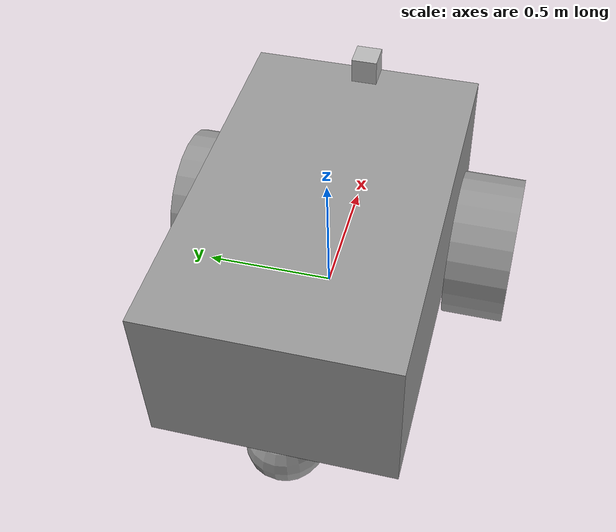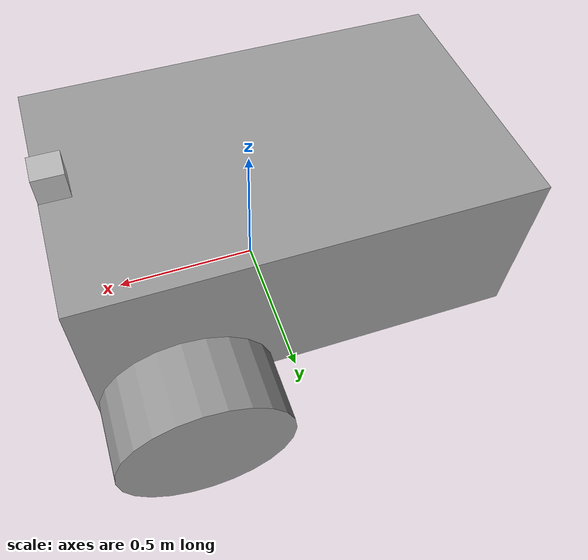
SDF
<?xml version='1.0'?>
<sdf version='1.7'>
  <model name='robot_000'>
    <link name='caster'>
      <inertial>
        <mass>1</mass>
        <inertia>
          <ixx>0.1</ixx>
          <ixy>0</ixy>
          <ixz>0</ixz>
          <iyy>0.1</iyy>
          <iyz>0</iyz>
          <izz>0.1</izz>
        </inertia>
        <pose>0 0 0 0 -0 0</pose>
      </inertial>
      <pose>-0.656931 0 -0.1875 0 -0 0</pose>
      <gravity>1</gravity>
      <self_collide>0</self_collide>
      <kinematic>0</kinematic>
      <enable_wind>0</enable_wind>
      <visual name='visual'>
        <pose>0 0 0 0 -0 0</pose>
        <geometry>
          <sphere>
            <radius>0.15</radius>
          </sphere>
        </geometry>
        <material>
          <lighting>1</lighting>
          <script>
            <uri>file://media/materials/scripts/gazebo.material</uri>
            <name>Gazebo/Grey</name>
          </script>
          <shader type='pixel'>
            <normal_map>__default__</normal_map>
          </shader>
          <ambient>0.3 0.3 0.3 1</ambient>
          <diffuse>0.7 0.7 0.7 1</diffuse>
          <specular>0.01 0.01 0.01 1</specular>
          <emissive>0 0 0 1</emissive>
        </material>
        <transparency>0</transparency>
        <cast_shadows>1</cast_shadows>
      </visual>
      <collision name='collision'>
        <laser_retro>0</laser_retro>
        <max_contacts>10</max_contacts>
        <pose>0 0 0 0 -0 0</pose>
        <geometry>
          <sphere>
            <radius>0.15</radius>
          </sphere>
        </geometry>
        <surface>
          <friction>
            <ode>
              <mu>1</mu>
              <mu2>1</mu2>
              <fdir1>0 0 0</fdir1>
              <slip1>0</slip1>
              <slip2>0</slip2>
            </ode>
            <torsional>
              <coefficient>1</coefficient>
              <patch_radius>0</patch_radius>
              <surface_radius>0</surface_radius>
              <use_patch_radius>1</use_patch_radius>
              <ode>
                <slip>0</slip>
              </ode>
            </torsional>
          </friction>
          <bounce>
            <restitution_coefficient>0</restitution_coefficient>
            <threshold>1e+06</threshold>
          </bounce>
          <contact>
            <collide_without_contact>0</collide_without_contact>
            <collide_without_contact_bitmask>1</collide_without_contact_bitmask>
            <collide_bitmask>1</collide_bitmask>
            <ode>
              <soft_cfm>0</soft_cfm>
              <soft_erp>0.2</soft_erp>
              <kp>1e+13</kp>
              <kd>1</kd>
              <max_vel>0.01</max_vel>
              <min_depth>0</min_depth>
            </ode>
            <bullet>
              <split_impulse>1</split_impulse>
              <split_impulse_penetration_threshold>-0.01</split_impulse_penetration_threshold>
              <soft_cfm>0</soft_cfm>
              <soft_erp>0.2</soft_erp>
              <kp>1e+13</kp>
              <kd>1</kd>
            </bullet>
          </contact>
        </surface>
      </collision>
    </link>
    <link name='chassis'>
      <inertial>
        <mass>1.1509</mass>
        <inertia>
          <ixx>0.15021</ixx>
          <ixy>0</ixy>
          <ixz>0</ixz>
          <iyy>0.279296</iyy>
          <iyz>0</iyz>
          <izz>0.286024</izz>
        </inertia>
        <pose>0 0 0 0 -0 0</pose>
      </inertial>
      <pose>-0.071386 0 0.2625 0 -0 0</pose>
      <gravity>1</gravity>
      <self_collide>0</self_collide>
      <kinematic>0</kinematic>
      <enable_wind>0</enable_wind>
      <visual name='visual'>
        <pose>0 0 0 0 -0 0</pose>
        <geometry>
          <box>
            <size>1.47109 0.904525 0.6</size>
          </box>
        </geometry>
        <material>
          <lighting>1</lighting>
          <script>
            <uri>file://media/materials/scripts/gazebo.material</uri>
            <name>Gazebo/Grey</name>
          </script>
          <shader type='pixel'>
            <normal_map>__default__</normal_map>
          </shader>
          <ambient>0.3 0.3 0.3 1</ambient>
          <diffuse>0.7 0.7 0.7 1</diffuse>
          <specular>0.01 0.01 0.01 1</specular>
          <emissive>0 0 0 1</emissive>
        </material>
        <transparency>0</transparency>
        <cast_shadows>1</cast_shadows>
      </visual>
      <collision name='collision'>
        <laser_retro>0</laser_retro>
        <max_contacts>10</max_contacts>
        <pose>0 0 0 0 -0 0</pose>
        <geometry>
          <box>
            <size>1.47109 0.904525 0.6</size>
          </box>
        </geometry>
        <surface>
          <friction>
            <ode>
              <mu>1</mu>
              <mu2>1</mu2>
              <fdir1>0 0 0</fdir1>
              <slip1>0</slip1>
              <slip2>0</slip2>
            </ode>
            <torsional>
              <coefficient>1</coefficient>
              <patch_radius>0</patch_radius>
              <surface_radius>0</surface_radius>
              <use_patch_radius>1</use_patch_radius>
              <ode>
                <slip>0</slip>
              </ode>
            </torsional>
          </friction>
          <bounce>
            <restitution_coefficient>0</restitution_coefficient>
            <threshold>1e+06</threshold>
          </bounce>
          <contact>
            <collide_without_contact>0</collide_without_contact>
            <collide_without_contact_bitmask>1</collide_without_contact_bitmask>
            <collide_bitmask>1</collide_bitmask>
            <ode>
              <soft_cfm>0</soft_cfm>
              <soft_erp>0.2</soft_erp>
              <kp>1e+13</kp>
              <kd>1</kd>
              <max_vel>0.01</max_vel>
              <min_depth>0</min_depth>
            </ode>
            <bullet>
              <split_impulse>1</split_impulse>
              <split_impulse_penetration_threshold>-0.01</split_impulse_penetration_threshold>
              <soft_cfm>0</soft_cfm>
              <soft_erp>0.2</soft_erp>
              <kp>1e+13</kp>
              <kd>1</kd>
            </bullet>
          </contact>
        </surface>
      </collision>
    </link>
    <link name='wheel_left'>
      <inertial>
        <mass>0.0239087</mass>
        <inertia>
          <ixx>0.00044912</ixx>
          <ixy>0</ixy>
          <ixz>0</ixz>
          <iyy>0.00044912</iyy>
          <iyz>0</iyz>
          <izz>0.00087145</izz>
        </inertia>
        <pose>0 0 0 0 -0 0</pose>
      </inertial>
      <pose>0.364158 0.577265 -0.0375 -1.5708 -0 3e-06</pose>
      <gravity>1</gravity>
      <self_collide>0</self_collide>
      <kinematic>0</kinematic>
      <enable_wind>0</enable_wind>
      <visual name='visual'>
        <pose>0 0 0 0 -0 0</pose>
        <geometry>
          <cylinder>
            <radius>0.3</radius>
            <length>0.25</length>
          </cylinder>
        </geometry>
        <material>
          <lighting>1</lighting>
          <script>
            <uri>file://media/materials/scripts/gazebo.material</uri>
            <name>Gazebo/Grey</name>
          </script>
          <shader type='pixel'>
            <normal_map>__default__</normal_map>
          </shader>
          <ambient>0.3 0.3 0.3 1</ambient>
          <diffuse>0.7 0.7 0.7 1</diffuse>
          <specular>0.01 0.01 0.01 1</specular>
          <emissive>0 0 0 1</emissive>
        </material>
        <transparency>0</transparency>
        <cast_shadows>1</cast_shadows>
      </visual>
      <collision name='collision'>
        <laser_retro>0</laser_retro>
        <max_contacts>10</max_contacts>
        <pose>0 0 0 0 -0 0</pose>
        <geometry>
          <cylinder>
            <radius>0.3</radius>
            <length>0.25</length>
          </cylinder>
        </geometry>
        <surface>
          <friction>
            <ode>
              <mu>1</mu>
              <mu2>1</mu2>
              <fdir1>0 0 0</fdir1>
              <slip1>0</slip1>
              <slip2>0</slip2>
            </ode>
            <torsional>
              <coefficient>1</coefficient>
              <patch_radius>0</patch_radius>
              <surface_radius>0</surface_radius>
              <use_patch_radius>1</use_patch_radius>
              <ode>
                <slip>0</slip>
              </ode>
            </torsional>
          </friction>
          <bounce>
            <restitution_coefficient>0</restitution_coefficient>
            <threshold>1e+06</threshold>
          </bounce>
          <contact>
            <collide_without_contact>0</collide_without_contact>
            <collide_without_contact_bitmask>1</collide_without_contact_bitmask>
            <collide_bitmask>1</collide_bitmask>
            <ode>
              <soft_cfm>0</soft_cfm>
              <soft_erp>0.2</soft_erp>
              <kp>1e+13</kp>
              <kd>1</kd>
              <max_vel>0.01</max_vel>
              <min_depth>0</min_depth>
            </ode>
            <bullet>
              <split_impulse>1</split_impulse>
              <split_impulse_penetration_threshold>-0.01</split_impulse_penetration_threshold>
              <soft_cfm>0</soft_cfm>
              <soft_erp>0.2</soft_erp>
              <kp>1e+13</kp>
              <kd>1</kd>
            </bullet>
          </contact>
        </surface>
      </collision>
    </link>
    <link name='wheel_right'>
      <inertial>
        <mass>0.0239087</mass>
        <inertia>
          <ixx>0.00044912</ixx>
          <ixy>0</ixy>
          <ixz>0</ixz>
          <iyy>0.00044912</iyy>
          <iyz>0</iyz>
          <izz>0.00087145</izz>
        </inertia>
        <pose>0 0 0 0 -0 0</pose>
      </inertial>
      <pose>0.364159 -0.577264 -0.0375 -1.5708 -0 3e-06</pose>
      <gravity>1</gravity>
      <self_collide>0</self_collide>
      <kinematic>0</kinematic>
      <enable_wind>0</enable_wind>
      <visual name='visual'>
        <pose>0 0 0 0 -0 0</pose>
        <geometry>
          <cylinder>
            <radius>0.3</radius>
            <length>0.25</length>
          </cylinder>
        </geometry>
        <material>
          <lighting>1</lighting>
          <script>
            <uri>file://media/materials/scripts/gazebo.material</uri>
            <name>Gazebo/Grey</name>
          </script>
          <shader type='pixel'>
            <normal_map>__default__</normal_map>
          </shader>
          <ambient>0.3 0.3 0.3 1</ambient>
          <diffuse>0.7 0.7 0.7 1</diffuse>
          <specular>0.01 0.01 0.01 1</specular>
          <emissive>0 0 0 1</emissive>
        </material>
        <transparency>0</transparency>
        <cast_shadows>1</cast_shadows>
      </visual>
      <collision name='collision'>
        <laser_retro>0</laser_retro>
        <max_contacts>10</max_contacts>
        <pose>0 0 0 0 -0 0</pose>
        <geometry>
          <cylinder>
            <radius>0.3</radius>
            <length>0.25</length>
          </cylinder>
        </geometry>
        <surface>
          <friction>
            <ode>
              <mu>1</mu>
              <mu2>1</mu2>
              <fdir1>0 0 0</fdir1>
              <slip1>0</slip1>
              <slip2>0</slip2>
            </ode>
            <torsional>
              <coefficient>1</coefficient>
              <patch_radius>0</patch_radius>
              <surface_radius>0</surface_radius>
              <use_patch_radius>1</use_patch_radius>
              <ode>
                <slip>0</slip>
              </ode>
            </torsional>
          </friction>
          <bounce>
            <restitution_coefficient>0</restitution_coefficient>
            <threshold>1e+06</threshold>
          </bounce>
          <contact>
            <collide_without_contact>0</collide_without_contact>
            <collide_without_contact_bitmask>1</collide_without_contact_bitmask>
            <collide_bitmask>1</collide_bitmask>
            <ode>
              <soft_cfm>0</soft_cfm>
              <soft_erp>0.2</soft_erp>
              <kp>1e+13</kp>
              <kd>1</kd>
              <max_vel>0.01</max_vel>
              <min_depth>0</min_depth>
            </ode>
            <bullet>
              <split_impulse>1</split_impulse>
              <split_impulse_penetration_threshold>-0.01</split_impulse_penetration_threshold>
              <soft_cfm>0</soft_cfm>
              <soft_erp>0.2</soft_erp>
              <kp>1e+13</kp>
              <kd>1</kd>
            </bullet>
          </contact>
        </surface>
      </collision>
    </link>
    <model name='camera'>
      <pose>0.612872 -0.00649 0.611735 0 -0 0</pose>
      <link name='link'>
        <inertial>
          <mass>0.1</mass>
          <inertia>
            <ixx>0.000166667</ixx>
            <iyy>0.000166667</iyy>
            <izz>0.000166667</izz>
            <ixy>0</ixy>
            <ixz>0</ixz>
            <iyz>0</iyz>
          </inertia>
          <pose>0 0 0 0 -0 0</pose>
        </inertial>
        <collision name='collision'>
          <geometry>
            <box>
              <size>0.1 0.1 0.1</size>
            </box>
          </geometry>
          <max_contacts>10</max_contacts>
          <surface>
            <contact>
              <ode/>
            </contact>
            <bounce/>
            <friction>
              <torsional>
                <ode/>
              </torsional>
              <ode/>
            </friction>
          </surface>
        </collision>
        <visual name='visual'>
          <geometry>
            <box>
              <size>0.1 0.1 0.1</size>
            </box>
          </geometry>
        </visual>
        <sensor name='camera' type='camera'>
          <camera>
            <horizontal_fov>1.047</horizontal_fov>
            <image>
              <width>400</width>
              <height>400</height>
            </image>
            <clip>
              <near>0.1</near>
              <far>100</far>
            </clip>
          </camera>
          <plugin name="camera_controller" filename="libgazebo_ros_camera.so">
            <alwaysOn>true</alwaysOn>
            <updateRate>0.0</updateRate>
            <cameraName>forager/camera</cameraName>
            <imageTopicName>image_raw</imageTopicName>
            <cameraInfoTopicName>camera_info</cameraInfoTopicName>
            <frameName>camera_link</frameName>
            <hackBaseline>0.07</hackBaseline>
            <distortionK1>0.0</distortionK1>
            <distortionK2>0.0</distortionK2>
            <distortionK3>0.0</distortionK3>
            <distortionT1>0.0</distortionT1>
            <distortionT2>0.0</distortionT2>
          </plugin>
          <always_on>1</always_on>
          <update_rate>30</update_rate>
          <visualize>1</visualize>
        </sensor>
        <self_collide>0</self_collide>
        <enable_wind>0</enable_wind>
        <kinematic>0</kinematic>
      </link>
    </model>
    <joint name='camera_joint' type='fixed'>
      <parent>chassis</parent>
      <child>camera::link</child>
      <pose>0 0 0 0 -0 0</pose>
      <physics>
        <ode>
          <limit>
            <cfm>0</cfm>
            <erp>0.2</erp>
          </limit>
          <suspension>
            <cfm>0</cfm>
            <erp>0.2</erp>
          </suspension>
        </ode>
      </physics>
    </joint>
    <joint name='caster_joint' type='ball'>
      <parent>chassis</parent>
      <child>caster</child>
      <pose>0 0 0 0 -0 0</pose>
      <physics>
        <ode>
          <limit>
            <cfm>0</cfm>
            <erp>0.2</erp>
          </limit>
          <suspension>
            <cfm>0</cfm>
            <erp>0.2</erp>
          </suspension>
        </ode>
      </physics>
    </joint>
    <joint name='wheel_right_joint' type='revolute'>
      <parent>chassis</parent>
      <child>wheel_right</child>
      <pose>0 0 0 0 -0 0</pose>
      <axis>
        <xyz>0 0 1</xyz>
        <limit>
          <lower>-1.79769e+308</lower>
          <upper>1.79769e+308</upper>
          <effort>-1</effort>
          <velocity>-1</velocity>
        </limit>
        <dynamics>
          <spring_reference>0</spring_reference>
          <spring_stiffness>0</spring_stiffness>
          <damping>0</damping>
          <friction>0</friction>
        </dynamics>
      </axis>
      <physics>
        <ode>
          <limit>
            <cfm>0</cfm>
            <erp>0.2</erp>
          </limit>
          <suspension>
            <cfm>0</cfm>
            <erp>0.2</erp>
          </suspension>
        </ode>
      </physics>
    </joint>
    <joint name='wheel_left_joint' type='revolute'>
      <parent>chassis</parent>
      <child>wheel_left</child>
      <pose>0 0 0 0 -0 0</pose>
      <axis>
        <xyz>0 0 1</xyz>
        <limit>
          <lower>-1.79769e+308</lower>
          <upper>1.79769e+308</upper>
          <effort>-1</effort>
          <velocity>-1</velocity>
        </limit>
        <dynamics>
          <spring_reference>0</spring_reference>
          <spring_stiffness>0</spring_stiffness>
          <damping>0</damping>
          <friction>0</friction>
        </dynamics>
      </axis>
      <physics>
        <ode>
          <limit>
            <cfm>0</cfm>
            <erp>0.2</erp>
          </limit>
          <suspension>
            <cfm>0</cfm>
            <erp>0.2</erp>
          </suspension>
        </ode>
      </physics>
    </joint>
    <static>0</static>
    <allow_auto_disable>1</allow_auto_disable>
    <plugin name='differential_drive_controller' filename='libgazebo_ros_diff_drive.so'>
      <updateRate>100</updateRate>
      <leftJoint>wheel_left_joint</leftJoint>
      <rightJoint>wheel_right_joint</rightJoint>
      <wheelSeparation>0.904525</wheelSeparation>
      <wheelDiameter>0.6</wheelDiameter>
      <wheelAcceleration>1.0</wheelAcceleration>
      <wheelTorque>20</wheelTorque>
      <commandTopic>/forager/cmd_vel</commandTopic>
      <odometryTopic>odom</odometryTopic>
      <odometryFrame>odom</odometryFrame>
      <robotBaseFrame>base_footprint</robotBaseFrame>
      <odometrySource>1</odometrySource>
      <publishWheelTF>1</publishWheelTF>
      <publishOdom>1</publishOdom>
      <publishWheelJointState>1</publishWheelJointState>
      <legacyMode>0</legacyMode>
    </plugin>
  </model>
</sdf>
